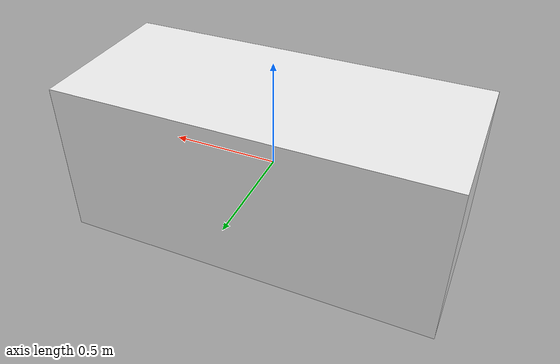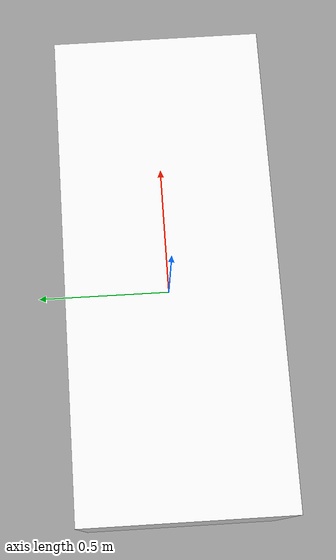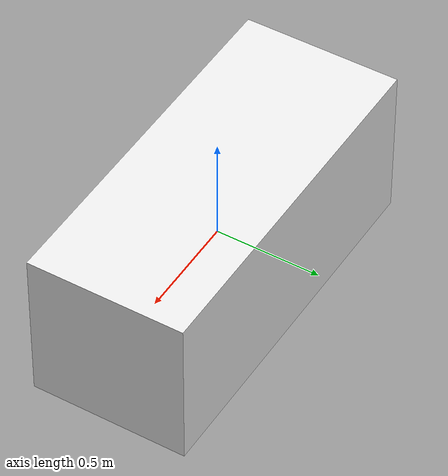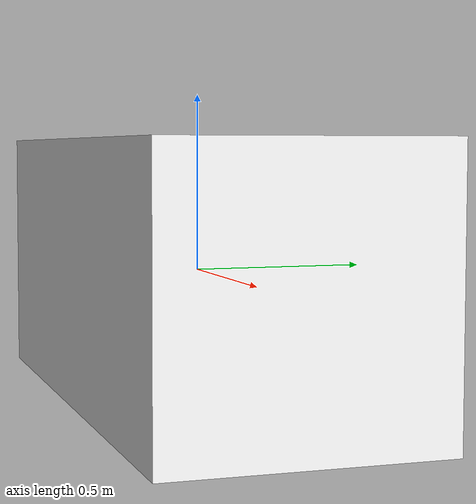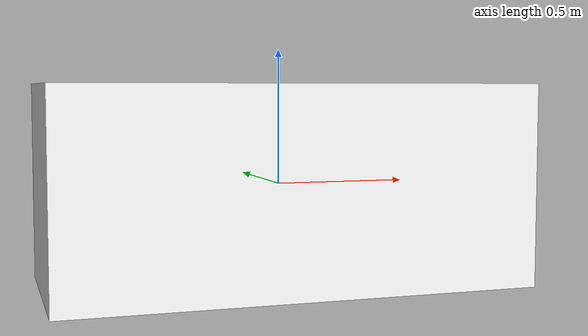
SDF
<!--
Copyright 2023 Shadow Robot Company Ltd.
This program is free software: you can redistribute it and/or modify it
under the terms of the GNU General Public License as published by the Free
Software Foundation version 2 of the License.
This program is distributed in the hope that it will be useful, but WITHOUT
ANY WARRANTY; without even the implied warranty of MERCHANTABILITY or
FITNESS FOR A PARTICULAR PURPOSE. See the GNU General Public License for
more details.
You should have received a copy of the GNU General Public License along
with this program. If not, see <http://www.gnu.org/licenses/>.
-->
<?xml version='1.0'?>

<sdf version="1.4">
<model name="human">
    <static>true</static>
    <link name="link">
      <collision name="collision_human">
        <geometry>
          <box>
            <size>1.75 0.75 0.75</size>
          </box>
        </geometry>
      </collision>
      <visual name="visual_human">
        <geometry>
          <box>
            <size>1.75 0.75 0.75</size>
          </box>
        </geometry>
        <material>
          <script>
            <uri>file://media/materials/scripts/gazebo.material</uri>
            <name>Gazebo/White</name>
          </script>
        </material>
      </visual>
    </link>
  </model>
</sdf>
